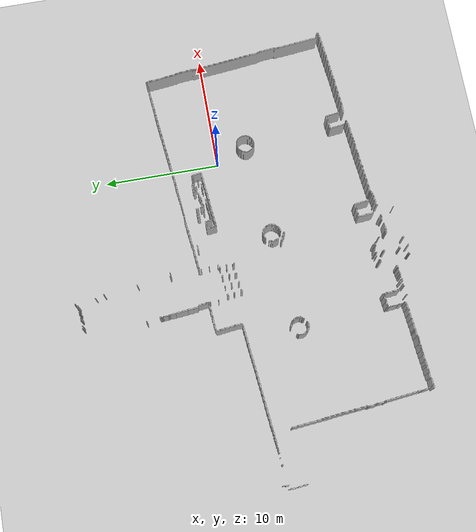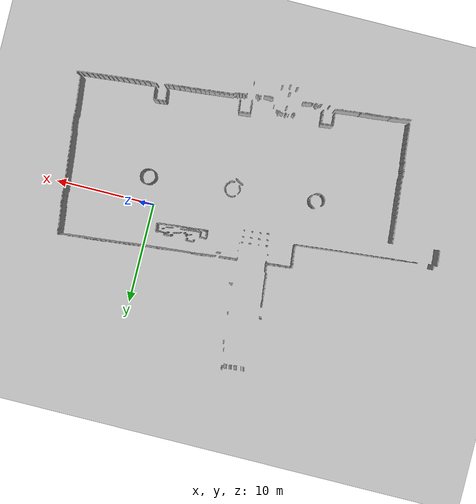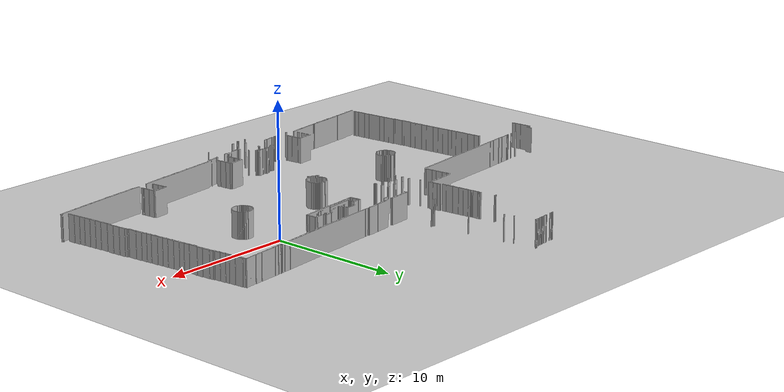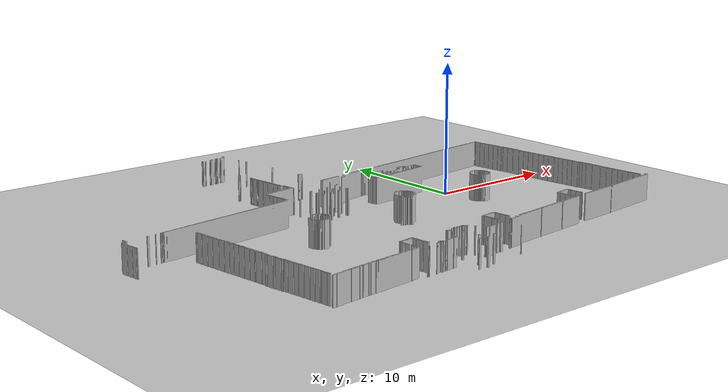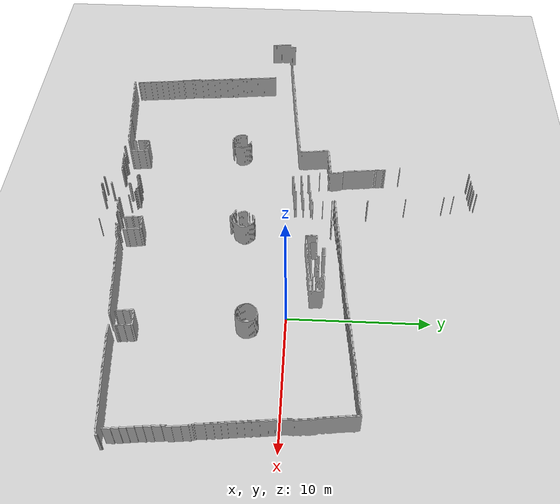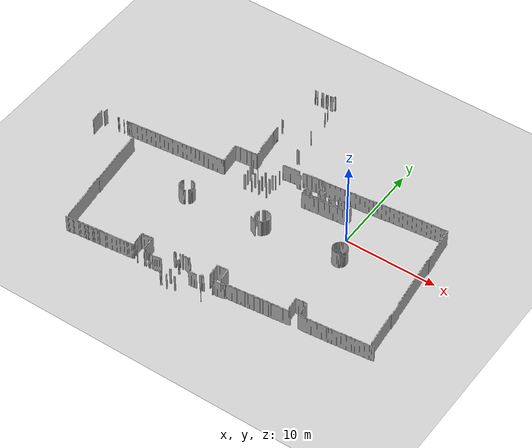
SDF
<?xml version="1.0" ?>
<sdf version="1.4">
  <world name="default">
    <include>
      <uri>model://ground_plane</uri>
    </include>
    <include>
      <uri>model://sun</uri>
    </include>
    <include>
      <uri>model://map36</uri>
    </include>
  </world>
</sdf>

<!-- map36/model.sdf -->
<sdf version="1.4">
  <model name="map">
    <link name="link">
      <inertial>
        <mass>15</mass>
        <inertia>
          <ixx>0.0</ixx>
          <ixy>0.0</ixy>
          <ixz>0.0</ixz>
          <iyy>0.0</iyy>
          <iyz>0.0</iyz>
          <izz>0.0</izz>
        </inertia>
      </inertial>
      <collision name="collision">
        <pose>0 0 0 0 0 0</pose>
        <geometry>
          <mesh>
            <uri>model://map36/meshes/map36.stl</uri>
          </mesh>
        </geometry>
      </collision>
      <visual name="visual">
        <pose>0 0 0 0 0 0</pose>
        <geometry>
          <mesh>
            <uri>model://map36/meshes/map36.stl</uri>
          </mesh>
        </geometry>
      </visual>
    </link>
    <static>1</static>
  </model>
</sdf>
